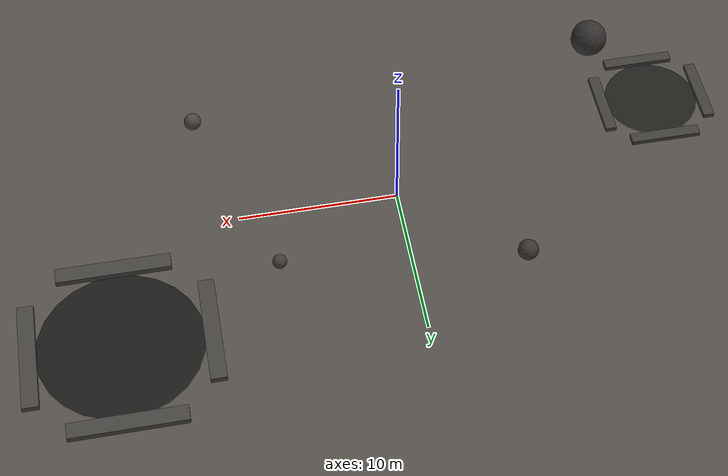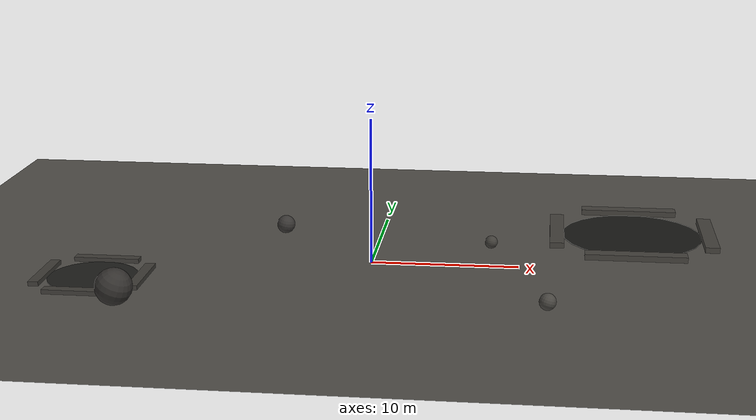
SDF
<?xml version="1.0" ?>
<sdf version="1.10">

  <world name="luna_world">

    <!-- MOON GRAVITY                                         -->

    <gravity>0 0 -1.62</gravity>

    <physics name="default_physics" type="ode">
      <max_step_size>0.004</max_step_size>
      <real_time_factor>1</real_time_factor>
      <real_time_update_rate>250</real_time_update_rate>
    </physics>

    <!-- GAZEBO SYSTEMS                                       -->

    <plugin
      filename="gz-sim-physics-system"
      name="gz::sim::systems::Physics"/>

    <plugin
      filename="gz-sim-user-commands-system"
      name="gz::sim::systems::UserCommands"/>

    <plugin
      filename="gz-sim-scene-broadcaster-system"
      name="gz::sim::systems::SceneBroadcaster"/>

    <!-- MOON SUN                                             -->

    <light
      name="sun"
      type="directional">

      <pose>0 0 100 0.4 -0.5 0</pose>

      <cast_shadows>true</cast_shadows>

      <diffuse>1 1 1 1</diffuse>
      <specular>0.2 0.2 0.2 1</specular>

      <attenuation>
        <range>1000</range>
        <constant>0.9</constant>
        <linear>0.01</linear>
        <quadratic>0.001</quadratic>
      </attenuation>

      <direction>-0.4 0.2 -1</direction>

    </light>

    <!-- LUNAR GROUND                                         -->

    <model name="lunar_ground">

      <static>true</static>

      <link name="ground">

        <!-- Ground collision -->

        <collision name="collision">

          <geometry>

            <plane>
              <normal>0 0 1</normal>
              <size>500 500</size>
            </plane>

          </geometry>

        </collision>

        <!-- Ground visual -->

        <visual name="visual">

          <geometry>

            <plane>
              <normal>0 0 1</normal>
              <size>500 500</size>
            </plane>

          </geometry>

          <material>

            <ambient>0.20 0.19 0.18 1</ambient>
            <diffuse>0.32 0.31 0.29 1</diffuse>
            <specular>0.05 0.05 0.05 1</specular>

          </material>

        </visual>

      </link>

    </model>

    <!-- SMALL LUNAR ROCK 01                                  -->

    <model name="rock_01">

      <static>true</static>

      <pose>8 4 0.45 0 0.2 0.4</pose>

      <link name="rock">

        <collision name="collision">

          <geometry>

            <sphere>
              <radius>0.45</radius>
            </sphere>

          </geometry>

        </collision>

        <visual name="visual">

          <geometry>

            <sphere>
              <radius>0.45</radius>
            </sphere>

          </geometry>

          <material>

            <ambient>0.16 0.15 0.14 1</ambient>
            <diffuse>0.25 0.24 0.22 1</diffuse>

          </material>

        </visual>

      </link>

    </model>

    <!-- SMALL LUNAR ROCK 02                                  -->

    <model name="rock_02">

      <static>true</static>

      <pose>-7 6 0.65 0.2 0.1 1</pose>

      <link name="rock">

        <collision name="collision">

          <geometry>

            <sphere>
              <radius>0.65</radius>
            </sphere>

          </geometry>

        </collision>

        <visual name="visual">

          <geometry>

            <sphere>
              <radius>0.65</radius>
            </sphere>

          </geometry>

          <material>

            <ambient>0.13 0.13 0.12 1</ambient>
            <diffuse>0.22 0.21 0.20 1</diffuse>

          </material>

        </visual>

      </link>

    </model>

    <!-- SMALL LUNAR ROCK 03                                  -->

    <model name="rock_03">

      <static>true</static>

      <pose>12 -8 0.55 0.1 0.3 0.8</pose>

      <link name="rock">

        <collision name="collision">

          <geometry>

            <sphere>
              <radius>0.55</radius>
            </sphere>

          </geometry>

        </collision>

        <visual name="visual">

          <geometry>

            <sphere>
              <radius>0.55</radius>
            </sphere>

          </geometry>

          <material>

            <ambient>0.18 0.17 0.16 1</ambient>
            <diffuse>0.28 0.27 0.25 1</diffuse>

          </material>

        </visual>

      </link>

    </model>

    <!-- LARGE LUNAR ROCK                                    -->

    <model name="large_rock">

      <static>true</static>

      <pose>-15 -10 1.2 0.2 0.4 0.2</pose>

      <link name="rock">

        <collision name="collision">

          <geometry>

            <sphere>
              <radius>1.2</radius>
            </sphere>

          </geometry>

        </collision>

        <visual name="visual">

          <geometry>

            <sphere>
              <radius>1.2</radius>
            </sphere>

          </geometry>

          <material>

            <ambient>0.12 0.12 0.11 1</ambient>
            <diffuse>0.20 0.19 0.18 1</diffuse>

          </material>

        </visual>

      </link>

    </model>

    <!-- LARGE LUNAR CRATER 01                               -->

    <model name="crater_01">

      <static>true</static>

      <pose>18 8 0 0 0 0</pose>

      <link name="crater">

        <!-- DARK CRATER FLOOR               -->

        <visual name="floor">

          <pose>0 0 0.015 0 0 0</pose>

          <geometry>

            <cylinder>
              <radius>5.0</radius>
              <length>0.03</length>
            </cylinder>

          </geometry>

          <material>

            <ambient>0.055 0.055 0.05 1</ambient>
            <diffuse>0.10 0.10 0.09 1</diffuse>
            <specular>0.01 0.01 0.01 1</specular>

          </material>

        </visual>

        <!-- CRATER RIM SEGMENT 01           -->

        <visual name="rim_01">

          <pose>0 5.4 0.20 0 0 0</pose>

          <geometry>

            <box>
              <size>7.0 1.0 0.40</size>
            </box>

          </geometry>

          <material>

            <ambient>0.17 0.16 0.15 1</ambient>
            <diffuse>0.27 0.26 0.24 1</diffuse>

          </material>

        </visual>

        <!-- CRATER RIM SEGMENT 02           -->

        <visual name="rim_02">

          <pose>0 -5.4 0.20 0 0 0</pose>

          <geometry>

            <box>
              <size>7.0 1.0 0.40</size>
            </box>

          </geometry>

          <material>

            <ambient>0.17 0.16 0.15 1</ambient>
            <diffuse>0.27 0.26 0.24 1</diffuse>

          </material>

        </visual>

        <!-- CRATER RIM SEGMENT 03           -->

        <visual name="rim_03">

          <pose>5.4 0 0.20 0 0 1.5708</pose>

          <geometry>

            <box>
              <size>7.0 1.0 0.40</size>
            </box>

          </geometry>

          <material>

            <ambient>0.17 0.16 0.15 1</ambient>
            <diffuse>0.27 0.26 0.24 1</diffuse>

          </material>

        </visual>

        <!-- CRATER RIM SEGMENT 04           -->

        <visual name="rim_04">

          <pose>-5.4 0 0.20 0 0 1.5708</pose>

          <geometry>

            <box>
              <size>7.0 1.0 0.40</size>
            </box>

          </geometry>

          <material>

            <ambient>0.17 0.16 0.15 1</ambient>
            <diffuse>0.27 0.26 0.24 1</diffuse>

          </material>

        </visual>

      </link>

    </model>

    <!-- SMALL LUNAR CRATER 02                               -->

    <model name="crater_02">

      <static>true</static>

      <pose>-18 -5 0 0 0 0</pose>

      <link name="crater">

        <!-- Dark floor -->

        <visual name="floor">

          <pose>0 0 0.015 0 0 0</pose>

          <geometry>

            <cylinder>
              <radius>3.0</radius>
              <length>0.03</length>
            </cylinder>

          </geometry>

          <material>

            <ambient>0.06 0.06 0.055 1</ambient>
            <diffuse>0.12 0.12 0.11 1</diffuse>

          </material>

        </visual>

        <!-- Rim 01 -->

        <visual name="rim_01">

          <pose>0 3.3 0.15 0 0 0</pose>

          <geometry>

            <box>
              <size>4.5 0.7 0.30</size>
            </box>

          </geometry>

          <material>

            <ambient>0.16 0.15 0.14 1</ambient>
            <diffuse>0.25 0.24 0.22 1</diffuse>

          </material>

        </visual>

        <!-- Rim 02 -->

        <visual name="rim_02">

          <pose>0 -3.3 0.15 0 0 0</pose>

          <geometry>

            <box>
              <size>4.5 0.7 0.30</size>
            </box>

          </geometry>

          <material>

            <ambient>0.16 0.15 0.14 1</ambient>
            <diffuse>0.25 0.24 0.22 1</diffuse>

          </material>

        </visual>

        <!-- Rim 03 -->

        <visual name="rim_03">

          <pose>3.3 0 0.15 0 0 1.5708</pose>

          <geometry>

            <box>
              <size>4.5 0.7 0.30</size>
            </box>

          </geometry>

          <material>

            <ambient>0.16 0.15 0.14 1</ambient>
            <diffuse>0.25 0.24 0.22 1</diffuse>

          </material>

        </visual>

        <!-- Rim 04 -->

        <visual name="rim_04">

          <pose>-3.3 0 0.15 0 0 1.5708</pose>

          <geometry>

            <box>
              <size>4.5 0.7 0.30</size>
            </box>

          </geometry>

          <material>

            <ambient>0.16 0.15 0.14 1</ambient>
            <diffuse>0.25 0.24 0.22 1</diffuse>

          </material>

        </visual>

      </link>

    </model>

  </world>

</sdf>
